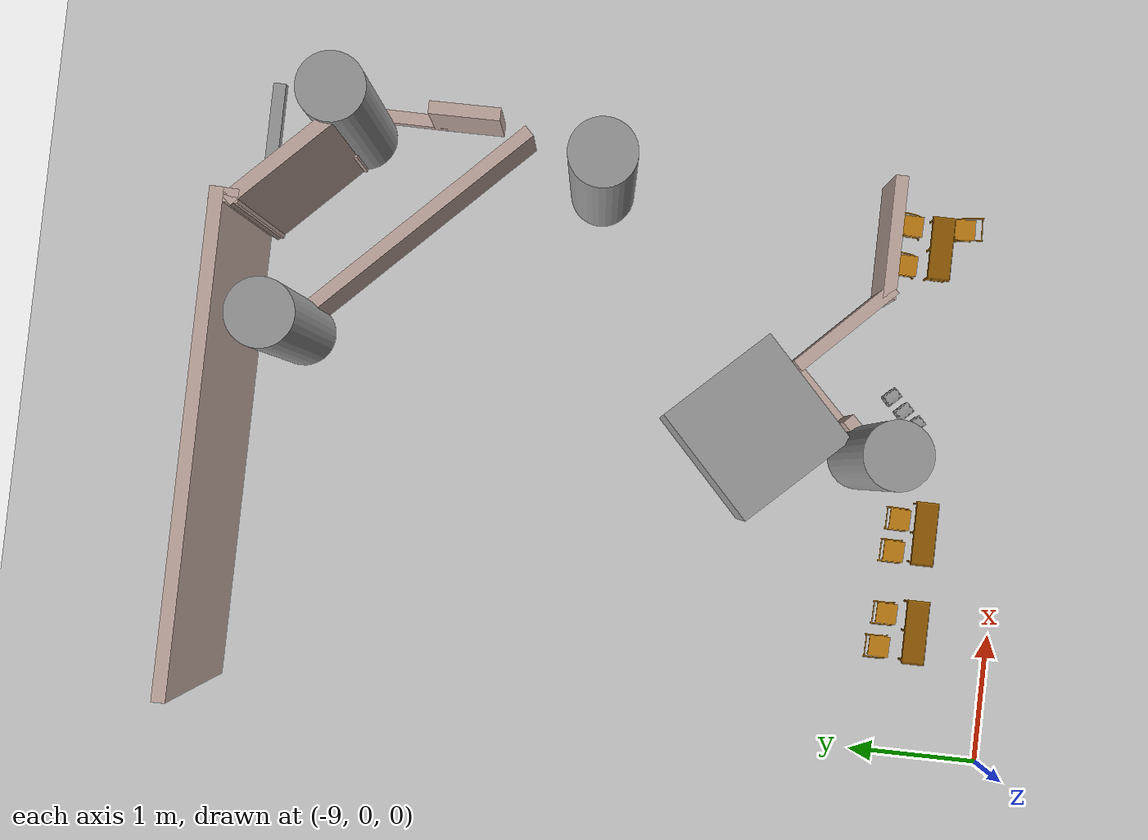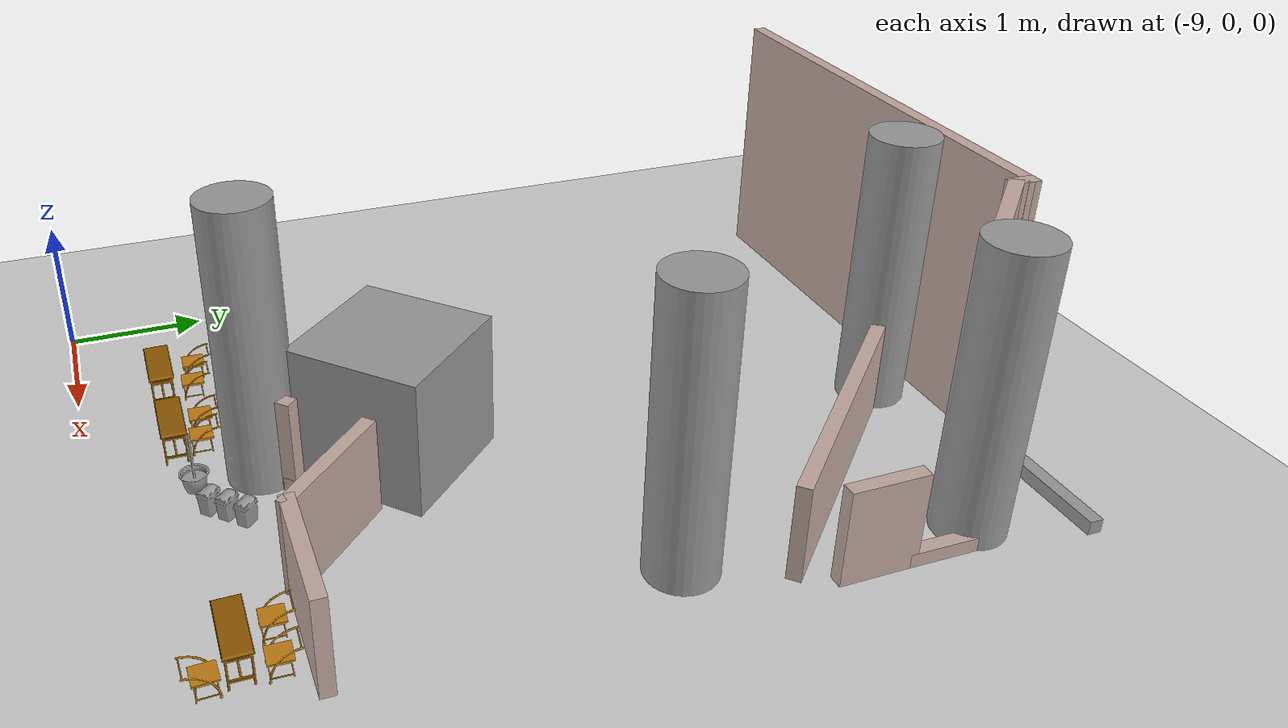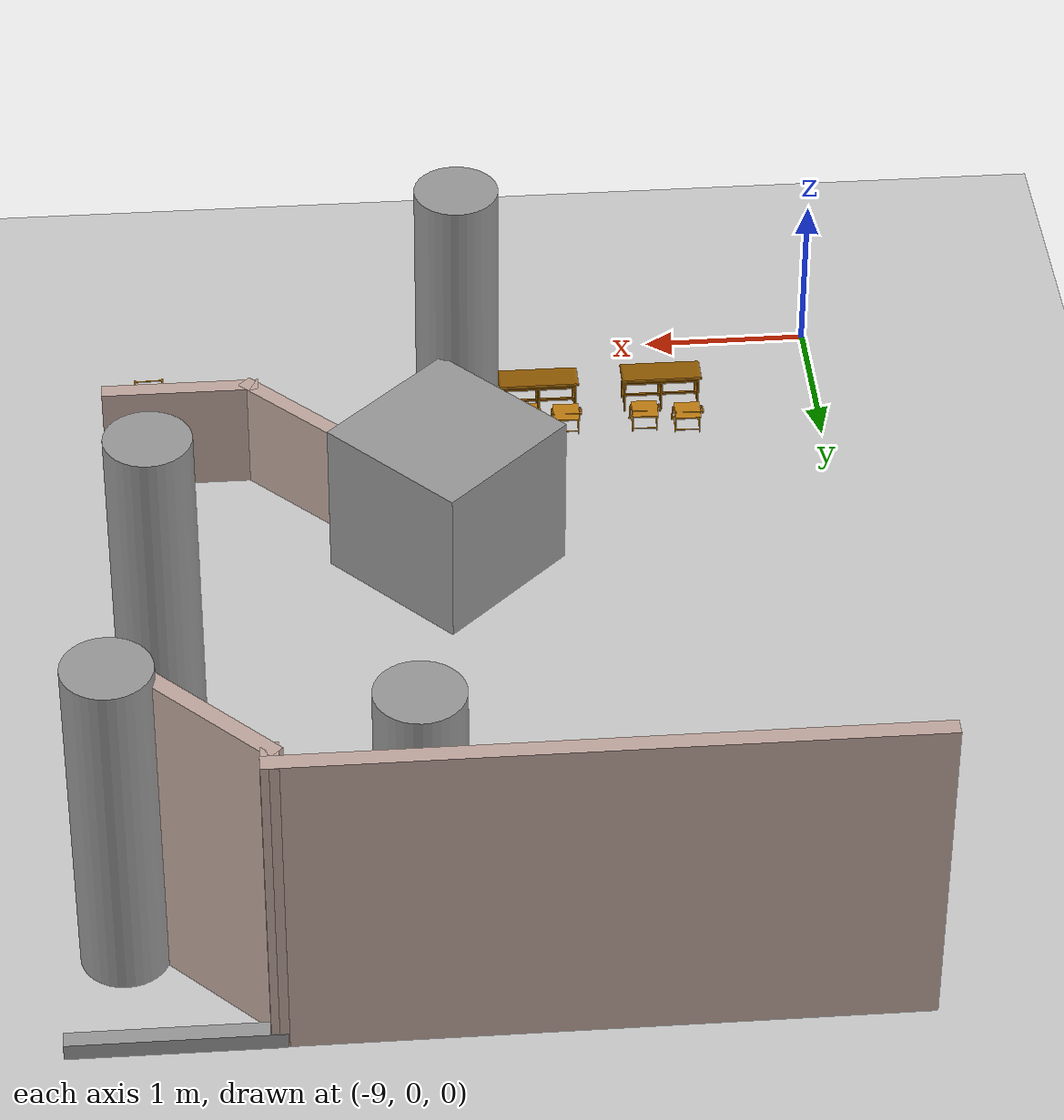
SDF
<sdf version="1.6">
 <world name="default">
  <model name="ground_plane">
   <static>1</static>
   <link name="link">
    <collision name="collision">
     <geometry><plane><normal>0 0 1</normal><size>100 100</size></plane></geometry>
     <surface>
      <contact><collide_bitmask>65535</collide_bitmask></contact>
      <friction><ode><mu>100</mu><mu2>50</mu2></ode></friction>
     </surface>
    </collision>
    <visual name="visual">
     <cast_shadows>0</cast_shadows>
     <geometry><plane><normal>0 0 1</normal><size>100 100</size></plane></geometry>
     <material>
      <script><uri>file://media/materials/scripts/gazebo.material</uri><name>Gazebo/Grey</name></script>
     </material>
    </visual>
   </link>
  </model>
  <model name="gedung_p">
   <pose>2.96636 -2.09069 0 0 -0 0</pose>
   <link name="Wall_116">
    <collision name="Wall_116_Collision">
     <geometry><box><size>1.20046 0.1 0.1</size></box></geometry>
     <pose>0 0 0.05 0 -0 0</pose>
    </collision>
    <visual name="Wall_116_Visual">
     <pose>0 0 0.05 0 -0 0</pose>
     <geometry><box><size>1.20046 0.1 0.1</size></box></geometry>
     <material>
      <script><uri>file://media/materials/scripts/gazebo.material</uri><name>Gazebo/Grey</name></script>
      <ambient>1 1 1 1</ambient>
     </material>
     <meta><layer>0</layer></meta>
    </visual>
    <pose>-7.82151 8.1548 0 0 -0 3.14159</pose>
   </link>
   <link name="Wall_122">
    <collision name="Wall_122_Collision">
     <geometry><box><size>2.45 0.1 0.7</size></box></geometry>
     <pose>0 0 0.35 0 -0 0</pose>
    </collision>
    <visual name="Wall_122_Visual">
     <pose>0 0 0.35 0 -0 0</pose>
     <geometry><box><size>2.45 0.1 0.7</size></box></geometry>
     <material>
      <script><uri>file://media/materials/scripts/gazebo.material</uri><name>Gazebo/Grey</name></script>
      <ambient>0.760784 0.662745 0.627451 1</ambient>
     </material>
     <meta><layer>0</layer></meta>
    </visual>
    <pose>-8.34851 6.9748 0 0 -0 -0.785398</pose>
   </link>
   <link name="Wall_26">
    <collision name="Wall_26_Collision">
     <geometry><box><size>3.5939 0.1 2</size></box></geometry>
     <pose>0 0 1 0 -0 0</pose>
    </collision>
    <visual name="Wall_26_Visual">
     <pose>0 0 1 0 -0 0</pose>
     <geometry><box><size>3.5939 0.1 2</size></box></geometry>
     <material>
      <script><uri>file://media/materials/scripts/gazebo.material</uri><name>Gazebo/Grey</name></script>
      <ambient>0.760784 0.662745 0.627451 1</ambient>
     </material>
     <meta><layer>0</layer></meta>
    </visual>
    <pose>-10.1275 8.1463 0 0 -0 -3.13959</pose>
   </link>
   <link name="Wall_28">
    <collision name="Wall_28_Collision">
     <geometry><box><size>0.207387 0.1 2</size></box></geometry>
     <pose>0 0 1 0 -0 0</pose>
    </collision>
    <visual name="Wall_28_Visual">
     <pose>0 0 1 0 -0 0</pose>
     <geometry><box><size>0.207387 0.1 2</size></box></geometry>
     <material>
      <script><uri>file://media/materials/scripts/gazebo.material</uri><name>Gazebo/Grey</name></script>
      <ambient>0.760784 0.662745 0.627451 1</ambient>
     </material>
     <meta><layer>0</layer></meta>
    </visual>
    <pose>-8.38251 8.0963 0 0 -0 -1.60816</pose>
   </link>
   <link name="Wall_29">
    <collision name="Wall_29_Collision">
     <geometry><box><size>0.95 0.1 2</size></box></geometry>
     <pose>0 0 1 0 -0 0</pose>
    </collision>
    <visual name="Wall_29_Visual">
     <pose>0 0 1 0 -0 0</pose>
     <geometry><box><size>0.95 0.1 2</size></box></geometry>
     <material>
      <script><uri>file://media/materials/scripts/gazebo.material</uri><name>Gazebo/Grey</name></script>
      <ambient>0.760784 0.662745 0.627451 1</ambient>
     </material>
     <meta><layer>0</layer></meta>
    </visual>
    <pose>-8.08401 7.7423 0 0 -0 -0.785398</pose>
   </link>
   <link name="Wall_30">
    <collision name="Wall_30_Collision">
     <geometry><box><size>0.5 0.1 0.7</size></box></geometry>
     <pose>0 0 0.35 0 -0 0</pose>
    </collision>
    <visual name="Wall_30_Visual">
     <pose>0 0 0.35 0 -0 0</pose>
     <geometry><box><size>0.5 0.1 0.7</size></box></geometry>
     <material>
      <script><uri>file://media/materials/scripts/gazebo.material</uri><name>Gazebo/Grey</name></script>
      <ambient>0.760784 0.662745 0.627451 1</ambient>
     </material>
     <meta><layer>0</layer></meta>
    </visual>
    <pose>-7.58351 7.4418 0 0 -0 0</pose>
   </link>
   <link name="Wall_39">
    <collision name="Wall_39_Collision">
     <geometry><box><size>0.949701 0.1 0.7</size></box></geometry>
     <pose>0 0 0.35 0 -0 0</pose>
    </collision>
    <visual name="Wall_39_Visual">
     <pose>0 0 0.35 0 -0 0</pose>
     <geometry><box><size>0.949701 0.1 0.7</size></box></geometry>
     <material>
      <script><uri>file://media/materials/scripts/gazebo.material</uri><name>Gazebo/Grey</name></script>
      <ambient>0.760784 0.662745 0.627451 1</ambient>
     </material>
     <meta><layer>0</layer></meta>
    </visual>
    <pose>-7.98551 3.2448 0 0 -0 3.14159</pose>
   </link>
   <link name="Wall_40">
    <collision name="Wall_40_Collision">
     <geometry><box><size>0.949942 0.1 0.7</size></box></geometry>
     <pose>0 0 0.35 0 -0 0</pose>
    </collision>
    <visual name="Wall_40_Visual">
     <pose>0 0 0.35 0 -0 0</pose>
     <geometry><box><size>0.949942 0.1 0.7</size></box></geometry>
     <material>
      <script><uri>file://media/materials/scripts/gazebo.material</uri><name>Gazebo/Grey</name></script>
      <ambient>0.760784 0.662745 0.627451 1</ambient>
     </material>
     <meta><layer>0</layer></meta>
    </visual>
    <pose>-8.71101 3.5453 0 0 -0 2.35619</pose>
   </link>
   <link name="Wall_42">
    <collision name="Wall_42_Collision">
     <geometry><box><size>0.699577 0.1 0.1</size></box></geometry>
     <pose>0 0 0.05 0 -0 0</pose>
    </collision>
    <visual name="Wall_42_Visual">
     <pose>0 0 0.05 0 -0 0</pose>
     <geometry><box><size>0.699577 0.1 0.1</size></box></geometry>
     <material>
      <script><uri>file://media/materials/scripts/gazebo.material</uri><name>Gazebo/Grey</name></script>
      <ambient>0.760784 0.662745 0.627451 1</ambient>
     </material>
     <meta><layer>0</layer></meta>
    </visual>
    <pose>-9.22351 3.63381 0 0 -0 -2.35619</pose>
   </link>
   <link name="Wall_45">
    <collision name="Wall_45_Collision">
     <geometry><box><size>0.449951 0.1 0.7</size></box></geometry>
     <pose>0 0 0.35 0 -0 0</pose>
    </collision>
    <visual name="Wall_45_Visual">
     <pose>0 0 0.35 0 -0 0</pose>
     <geometry><box><size>0.449951 0.1 0.7</size></box></geometry>
     <material>
      <script><uri>file://media/materials/scripts/gazebo.material</uri><name>Gazebo/Grey</name></script>
      <ambient>0.760784 0.662745 0.627451 1</ambient>
     </material>
     <meta><layer>0</layer></meta>
    </visual>
    <pose>-9.55901 3.29831 0 0 -0 -2.35619</pose>
   </link>
   <link name="Wall_48">
    <collision name="Wall_48_Collision">
     <geometry><box><size>0.55301 0.1 0.7</size></box></geometry>
     <pose>0 0 0.35 0 -0 0</pose>
    </collision>
    <visual name="Wall_48_Visual">
     <pose>0 0 0.35 0 -0 0</pose>
     <geometry><box><size>0.55301 0.1 0.7</size></box></geometry>
     <material>
      <script><uri>file://media/materials/scripts/gazebo.material</uri><name>Gazebo/Grey</name></script>
      <ambient>0.760784 0.662745 0.627451 1</ambient>
     </material>
     <meta><layer>0</layer></meta>
    </visual>
    <pose>-7.38501 6.61831 0 0 -0 -1.56417</pose>
   </link>
   <link name="Wall_52">
    <collision name="Wall_52_Collision">
     <geometry><box><size>0.697008 0.1 0.1</size></box></geometry>
     <pose>0 0 0.05 0 -0 0</pose>
    </collision>
    <visual name="Wall_52_Visual">
     <pose>0 0 0.05 0 -0 0</pose>
     <geometry><box><size>0.697008 0.1 0.1</size></box></geometry>
     <material>
      <script><uri>file://media/materials/scripts/gazebo.material</uri><name>Gazebo/Grey</name></script>
      <ambient>0.760784 0.662745 0.627451 1</ambient>
     </material>
     <meta><layer>0</layer></meta>
    </visual>
    <pose>-7.38501 7.1433 0 0 -0 1.56577</pose>
   </link>
   <static>1</static>
  </model>
  <model name="tiang_besar_11">
   <link name="link_0">
    <inertial>
     <mass>1</mass>
     <inertia>
      <ixx>0.166667</ixx>
      <ixy>0</ixy>
      <ixz>0</ixz>
      <iyy>0.166667</iyy>
      <iyz>0</iyz>
      <izz>0.166667</izz>
     </inertia>
    </inertial>
    <pose>0.080543 -0.031124 0 0 -0 0</pose>
    <visual name="visual">
     <geometry>
      <mesh><uri>/home/thardi/Gazebo Objek/cylinder sedang.dae</uri><scale>1 1 1.15</scale></mesh>
     </geometry>
     <material>
      <lighting>1</lighting>
      <script><uri>file://media/materials/scripts/gazebo.material</uri><name>Gazebo/Grey</name></script>
      <shader type="vertex"><normal_map>__default__</normal_map></shader>
      <ambient>0.3 0.3 0.3 1</ambient>
      <diffuse>0.7 0.7 0.7 1</diffuse>
      <specular>0.01 0.01 0.01 1</specular>
      <emissive>0 0 0 1</emissive>
     </material>
    </visual>
    <collision name="collision">
     <geometry>
      <mesh><uri>/home/thardi/Gazebo Objek/cylinder sedang.dae</uri><scale>1 1 1.15</scale></mesh>
     </geometry>
     <surface>
      <friction>
       <ode><mu>1.15</mu><mu2>1</mu2><fdir1>0 0 0</fdir1><slip1>0</slip1><slip2>0</slip2></ode>
       <torsional>
        <coefficient>1</coefficient>
        <patch_radius>0</patch_radius>
        <surface_radius>0</surface_radius>
        <use_patch_radius>1</use_patch_radius>
        <ode><slip>0</slip></ode>
       </torsional>
      </friction>
      <bounce><restitution_coefficient>0</restitution_coefficient><threshold>1e+06</threshold></bounce>
      <contact>
       <collide_without_contact>0</collide_without_contact>
       <collide_without_contact_bitmask>1</collide_without_contact_bitmask>
       <collide_bitmask>1</collide_bitmask>
       <ode>
        <soft_cfm>0</soft_cfm>
        <soft_erp>0.2</soft_erp>
        <kp>1e+13</kp>
        <kd>1</kd>
        <max_vel>0.01</max_vel>
        <min_depth>0</min_depth>
       </ode>
       <bullet>
        <split_impulse>1</split_impulse>
        <split_impulse_penetration_threshold>-0.01</split_impulse_penetration_threshold>
        <soft_cfm>0</soft_cfm>
        <soft_erp>0.2</soft_erp>
        <kp>1e+13</kp>
        <kd>1</kd>
       </bullet>
      </contact>
     </surface>
    </collision>
   </link>
   <static>1</static>
   <pose>-6.28848 5.6861 0 0 -0 0</pose>
  </model>
  <model name="tiang_besar_12">
   <link name="link_0">
    <inertial>
     <mass>1</mass>
     <inertia>
      <ixx>0.166667</ixx>
      <ixy>0</ixy>
      <ixz>0</ixz>
      <iyy>0.166667</iyy>
      <iyz>0</iyz>
      <izz>0.166667</izz>
     </inertia>
    </inertial>
    <pose>0.080543 -0.031124 0 0 -0 0</pose>
    <visual name="visual">
     <geometry>
      <mesh><uri>/home/thardi/Gazebo Objek/cylinder sedang.dae</uri><scale>1 1 1.15</scale></mesh>
     </geometry>
     <material>
      <lighting>1</lighting>
      <script><uri>file://media/materials/scripts/gazebo.material</uri><name>Gazebo/Grey</name></script>
      <shader type="vertex"><normal_map>__default__</normal_map></shader>
      <ambient>0.3 0.3 0.3 1</ambient>
      <diffuse>0.7 0.7 0.7 1</diffuse>
      <specular>0.01 0.01 0.01 1</specular>
      <emissive>0 0 0 1</emissive>
     </material>
    </visual>
    <collision name="collision">
     <geometry>
      <mesh><uri>/home/thardi/Gazebo Objek/cylinder sedang.dae</uri><scale>1 1 1.15</scale></mesh>
     </geometry>
     <surface>
      <friction>
       <ode><mu>1.15</mu><mu2>1</mu2><fdir1>0 0 0</fdir1><slip1>0</slip1><slip2>0</slip2></ode>
       <torsional>
        <coefficient>1</coefficient>
        <patch_radius>0</patch_radius>
        <surface_radius>0</surface_radius>
        <use_patch_radius>1</use_patch_radius>
        <ode><slip>0</slip></ode>
       </torsional>
      </friction>
      <bounce><restitution_coefficient>0</restitution_coefficient><threshold>1e+06</threshold></bounce>
      <contact>
       <collide_without_contact>0</collide_without_contact>
       <collide_without_contact_bitmask>1</collide_without_contact_bitmask>
       <collide_bitmask>1</collide_bitmask>
       <ode>
        <soft_cfm>0</soft_cfm>
        <soft_erp>0.2</soft_erp>
        <kp>1e+13</kp>
        <kd>1</kd>
        <max_vel>0.01</max_vel>
        <min_depth>0</min_depth>
       </ode>
       <bullet>
        <split_impulse>1</split_impulse>
        <split_impulse_penetration_threshold>-0.01</split_impulse_penetration_threshold>
        <soft_cfm>0</soft_cfm>
        <soft_erp>0.2</soft_erp>
        <kp>1e+13</kp>
        <kd>1</kd>
       </bullet>
      </contact>
     </surface>
    </collision>
   </link>
   <static>1</static>
   <pose>-4.67931 5.37519 0 0 -0 0</pose>
  </model>
  <model name="tiang_besar_13">
   <link name="link_0">
    <inertial>
     <mass>1</mass>
     <inertia>
      <ixx>0.166667</ixx>
      <ixy>0</ixy>
      <ixz>0</ixz>
      <iyy>0.166667</iyy>
      <iyz>0</iyz>
      <izz>0.166667</izz>
     </inertia>
    </inertial>
    <pose>0.080543 -0.031124 0 0 -0 0</pose>
    <visual name="visual">
     <geometry>
      <mesh><uri>/home/thardi/Gazebo Objek/cylinder sedang.dae</uri><scale>1 1 1.15</scale></mesh>
     </geometry>
     <material>
      <lighting>1</lighting>
      <script><uri>file://media/materials/scripts/gazebo.material</uri><name>Gazebo/Grey</name></script>
      <shader type="vertex"><normal_map>__default__</normal_map></shader>
      <ambient>0.3 0.3 0.3 1</ambient>
      <diffuse>0.7 0.7 0.7 1</diffuse>
      <specular>0.01 0.01 0.01 1</specular>
      <emissive>0 0 0 1</emissive>
     </material>
    </visual>
    <collision name="collision">
     <geometry>
      <mesh><uri>/home/thardi/Gazebo Objek/cylinder sedang.dae</uri><scale>1 1 1.15</scale></mesh>
     </geometry>
     <surface>
      <friction>
       <ode><mu>1.15</mu><mu2>1</mu2><fdir1>0 0 0</fdir1><slip1>0</slip1><slip2>0</slip2></ode>
       <torsional>
        <coefficient>1</coefficient>
        <patch_radius>0</patch_radius>
        <surface_radius>0</surface_radius>
        <use_patch_radius>1</use_patch_radius>
        <ode><slip>0</slip></ode>
       </torsional>
      </friction>
      <bounce><restitution_coefficient>0</restitution_coefficient><threshold>1e+06</threshold></bounce>
      <contact>
       <collide_without_contact>0</collide_without_contact>
       <collide_without_contact_bitmask>1</collide_without_contact_bitmask>
       <collide_bitmask>1</collide_bitmask>
       <ode>
        <soft_cfm>0</soft_cfm>
        <soft_erp>0.2</soft_erp>
        <kp>1e+13</kp>
        <kd>1</kd>
        <max_vel>0.01</max_vel>
        <min_depth>0</min_depth>
       </ode>
       <bullet>
        <split_impulse>1</split_impulse>
        <split_impulse_penetration_threshold>-0.01</split_impulse_penetration_threshold>
        <soft_cfm>0</soft_cfm>
        <soft_erp>0.2</soft_erp>
        <kp>1e+13</kp>
        <kd>1</kd>
       </bullet>
      </contact>
     </surface>
    </collision>
   </link>
   <static>1</static>
   <pose>-6.788 1.19748 0 0 -0 0</pose>
  </model>
  <model name="tiang_besar_14">
   <link name="link_0">
    <inertial>
     <mass>1</mass>
     <inertia>
      <ixx>0.166667</ixx>
      <ixy>0</ixy>
      <ixz>0</ixz>
      <iyy>0.166667</iyy>
      <iyz>0</iyz>
      <izz>0.166667</izz>
     </inertia>
    </inertial>
    <pose>0.080543 -0.031124 0 0 -0 0</pose>
    <visual name="visual">
     <geometry>
      <mesh><uri>/home/thardi/Gazebo Objek/cylinder sedang.dae</uri><scale>1 1 1.15</scale></mesh>
     </geometry>
     <material>
      <lighting>1</lighting>
      <script><uri>file://media/materials/scripts/gazebo.material</uri><name>Gazebo/Grey</name></script>
      <shader type="vertex"><normal_map>__default__</normal_map></shader>
      <ambient>0.3 0.3 0.3 1</ambient>
      <diffuse>0.7 0.7 0.7 1</diffuse>
      <specular>0.01 0.01 0.01 1</specular>
      <emissive>0 0 0 1</emissive>
     </material>
    </visual>
    <collision name="collision">
     <geometry>
      <mesh><uri>/home/thardi/Gazebo Objek/cylinder sedang.dae</uri><scale>1 1 1.15</scale></mesh>
     </geometry>
     <surface>
      <friction>
       <ode><mu>1.15</mu><mu2>1</mu2><fdir1>0 0 0</fdir1><slip1>0</slip1><slip2>0</slip2></ode>
       <torsional>
        <coefficient>1</coefficient>
        <patch_radius>0</patch_radius>
        <surface_radius>0</surface_radius>
        <use_patch_radius>1</use_patch_radius>
        <ode><slip>0</slip></ode>
       </torsional>
      </friction>
      <bounce><restitution_coefficient>0</restitution_coefficient><threshold>1e+06</threshold></bounce>
      <contact>
       <collide_without_contact>0</collide_without_contact>
       <collide_without_contact_bitmask>1</collide_without_contact_bitmask>
       <collide_bitmask>1</collide_bitmask>
       <ode>
        <soft_cfm>0</soft_cfm>
        <soft_erp>0.2</soft_erp>
        <kp>1e+13</kp>
        <kd>1</kd>
        <max_vel>0.01</max_vel>
        <min_depth>0</min_depth>
       </ode>
       <bullet>
        <split_impulse>1</split_impulse>
        <split_impulse_penetration_threshold>-0.01</split_impulse_penetration_threshold>
        <soft_cfm>0</soft_cfm>
        <soft_erp>0.2</soft_erp>
        <kp>1e+13</kp>
        <kd>1</kd>
       </bullet>
      </contact>
     </surface>
    </collision>
   </link>
   <static>1</static>
   <pose>-4.92685 3.45088 0 0 -0 0</pose>
  </model>
  <model name="meja_kantin_1">
   <link name="link_9">
    <inertial>
     <mass>1</mass>
     <inertia>
      <ixx>0.166667</ixx>
      <ixy>0</ixy>
      <ixz>0</ixz>
      <iyy>0.166667</iyy>
      <iyz>0</iyz>
      <izz>0.166667</izz>
     </inertia>
    </inertial>
    <visual name="visual">
     <geometry>
      <mesh><uri>/home/thardi/Gazebo Objek/meja kantin.dae</uri><scale>0.25 0.25 0.3</scale></mesh>
     </geometry>
     <material>
      <lighting>1</lighting>
      <script><uri>file://media/materials/scripts/gazebo.material</uri><name>Gazebo/Grey</name></script>
      <shader type="vertex"><normal_map>__default__</normal_map></shader>
      <ambient>0.561 0.349 0.008 1</ambient>
      <diffuse>0.561 0.349 0.008 1</diffuse>
      <specular>0.561 0.349 0.008 1</specular>
      <emissive>0.561 0.349 0.008 1</emissive>
     </material>
    </visual>
    <collision name="collision">
     <geometry>
      <mesh><uri>/home/thardi/Gazebo Objek/meja kantin.dae</uri><scale>0.25 0.25 0.3</scale></mesh>
     </geometry>
     <surface>
      <friction>
       <ode><mu>1</mu><mu2>1</mu2><fdir1>0 0 0</fdir1><slip1>0</slip1><slip2>0</slip2></ode>
       <torsional>
        <coefficient>1</coefficient>
        <patch_radius>0</patch_radius>
        <surface_radius>0</surface_radius>
        <use_patch_radius>1</use_patch_radius>
        <ode><slip>0</slip></ode>
       </torsional>
      </friction>
      <bounce><restitution_coefficient>0</restitution_coefficient><threshold>1e+06</threshold></bounce>
      <contact>
       <collide_without_contact>0</collide_without_contact>
       <collide_without_contact_bitmask>1</collide_without_contact_bitmask>
       <collide_bitmask>1</collide_bitmask>
       <ode>
        <soft_cfm>0</soft_cfm>
        <soft_erp>0.2</soft_erp>
        <kp>1e+13</kp>
        <kd>1</kd>
        <max_vel>0.01</max_vel>
        <min_depth>0</min_depth>
       </ode>
       <bullet>
        <split_impulse>1</split_impulse>
        <split_impulse_penetration_threshold>-0.01</split_impulse_penetration_threshold>
        <soft_cfm>0</soft_cfm>
        <soft_erp>0.2</soft_erp>
        <kp>1e+13</kp>
        <kd>1</kd>
       </bullet>
      </contact>
     </surface>
    </collision>
   </link>
   <static>1</static>
   <pose>-8.02224 0.609026 0 0 -0 0</pose>
  </model>
  <model name="meja_kantin_2">
   <link name="link_9">
    <inertial>
     <mass>1</mass>
     <inertia>
      <ixx>0.166667</ixx>
      <ixy>0</ixy>
      <ixz>0</ixz>
      <iyy>0.166667</iyy>
      <iyz>0</iyz>
      <izz>0.166667</izz>
     </inertia>
    </inertial>
    <visual name="visual">
     <geometry>
      <mesh><uri>/home/thardi/Gazebo Objek/meja kantin.dae</uri><scale>0.25 0.25 0.3</scale></mesh>
     </geometry>
     <material>
      <lighting>1</lighting>
      <script><uri>file://media/materials/scripts/gazebo.material</uri><name>Gazebo/Grey</name></script>
      <shader type="vertex"><normal_map>__default__</normal_map></shader>
      <ambient>0.561 0.349 0.008 1</ambient>
      <diffuse>0.561 0.349 0.008 1</diffuse>
      <specular>0.561 0.349 0.008 1</specular>
      <emissive>0.561 0.349 0.008 1</emissive>
     </material>
    </visual>
    <collision name="collision">
     <geometry>
      <mesh><uri>/home/thardi/Gazebo Objek/meja kantin.dae</uri><scale>0.25 0.25 0.3</scale></mesh>
     </geometry>
     <surface>
      <friction>
       <ode><mu>1</mu><mu2>1</mu2><fdir1>0 0 0</fdir1><slip1>0</slip1><slip2>0</slip2></ode>
       <torsional>
        <coefficient>1</coefficient>
        <patch_radius>0</patch_radius>
        <surface_radius>0</surface_radius>
        <use_patch_radius>1</use_patch_radius>
        <ode><slip>0</slip></ode>
       </torsional>
      </friction>
      <bounce><restitution_coefficient>0</restitution_coefficient><threshold>1e+06</threshold></bounce>
      <contact>
       <collide_without_contact>0</collide_without_contact>
       <collide_without_contact_bitmask>1</collide_without_contact_bitmask>
       <collide_bitmask>1</collide_bitmask>
       <ode>
        <soft_cfm>0</soft_cfm>
        <soft_erp>0.2</soft_erp>
        <kp>1e+13</kp>
        <kd>1</kd>
        <max_vel>0.01</max_vel>
        <min_depth>0</min_depth>
       </ode>
       <bullet>
        <split_impulse>1</split_impulse>
        <split_impulse_penetration_threshold>-0.01</split_impulse_penetration_threshold>
        <soft_cfm>0</soft_cfm>
        <soft_erp>0.2</soft_erp>
        <kp>1e+13</kp>
        <kd>1</kd>
       </bullet>
      </contact>
     </surface>
    </collision>
   </link>
   <static>1</static>
   <pose>-7.24941 0.617836 0 0 -0 0</pose>
  </model>
  <model name="meja_kantin_3">
   <link name="link_9">
    <inertial>
     <mass>1</mass>
     <inertia>
      <ixx>0.166667</ixx>
      <ixy>0</ixy>
      <ixz>0</ixz>
      <iyy>0.166667</iyy>
      <iyz>0</iyz>
      <izz>0.166667</izz>
     </inertia>
    </inertial>
    <visual name="visual">
     <geometry>
      <mesh><uri>/home/thardi/Gazebo Objek/meja kantin.dae</uri><scale>0.25 0.25 0.3</scale></mesh>
     </geometry>
     <material>
      <lighting>1</lighting>
      <script><uri>file://media/materials/scripts/gazebo.material</uri><name>Gazebo/Grey</name></script>
      <shader type="vertex"><normal_map>__default__</normal_map></shader>
      <ambient>0.561 0.349 0.008 1</ambient>
      <diffuse>0.561 0.349 0.008 1</diffuse>
      <specular>0.561 0.349 0.008 1</specular>
      <emissive>0.561 0.349 0.008 1</emissive>
     </material>
    </visual>
    <collision name="collision">
     <geometry>
      <mesh><uri>/home/thardi/Gazebo Objek/meja kantin.dae</uri><scale>0.25 0.25 0.3</scale></mesh>
     </geometry>
     <surface>
      <friction>
       <ode><mu>1</mu><mu2>1</mu2><fdir1>0 0 0</fdir1><slip1>0</slip1><slip2>0</slip2></ode>
       <torsional>
        <coefficient>1</coefficient>
        <patch_radius>0</patch_radius>
        <surface_radius>0</surface_radius>
        <use_patch_radius>1</use_patch_radius>
        <ode><slip>0</slip></ode>
       </torsional>
      </friction>
      <bounce><restitution_coefficient>0</restitution_coefficient><threshold>1e+06</threshold></bounce>
      <contact>
       <collide_without_contact>0</collide_without_contact>
       <collide_without_contact_bitmask>1</collide_without_contact_bitmask>
       <collide_bitmask>1</collide_bitmask>
       <ode>
        <soft_cfm>0</soft_cfm>
        <soft_erp>0.2</soft_erp>
        <kp>1e+13</kp>
        <kd>1</kd>
        <max_vel>0.01</max_vel>
        <min_depth>0</min_depth>
       </ode>
       <bullet>
        <split_impulse>1</split_impulse>
        <split_impulse_penetration_threshold>-0.01</split_impulse_penetration_threshold>
        <soft_cfm>0</soft_cfm>
        <soft_erp>0.2</soft_erp>
        <kp>1e+13</kp>
        <kd>1</kd>
       </bullet>
      </contact>
     </surface>
    </collision>
   </link>
   <static>1</static>
   <pose>-5.00888 0.725093 0 0 -0 0</pose>
  </model>
  <model name="pot_0">
   <link name="link_12">
    <inertial>
     <mass>1</mass>
     <inertia>
      <ixx>0.166667</ixx>
      <ixy>0</ixy>
      <ixz>0</ixz>
      <iyy>0.166667</iyy>
      <iyz>0</iyz>
      <izz>0.166667</izz>
     </inertia>
    </inertial>
    <visual name="visual">
     <geometry><mesh><uri>/home/thardi/Gazebo Objek/pot.dae</uri><scale>0.2 0.2 0.2</scale></mesh></geometry>
     <material>
      <lighting>1</lighting>
      <script><uri>file://media/materials/scripts/gazebo.material</uri><name>Gazebo/Grey</name></script>
      <shader type="vertex"><normal_map>__default__</normal_map></shader>
      <ambient>0.3 0.3 0.3 1</ambient>
      <diffuse>0.7 0.7 0.7 1</diffuse>
      <specular>0.01 0.01 0.01 1</specular>
      <emissive>0 0 0 1</emissive>
     </material>
    </visual>
    <collision name="collision">
     <geometry><mesh><uri>/home/thardi/Gazebo Objek/pot.dae</uri><scale>0.2 0.2 0.2</scale></mesh></geometry>
     <surface>
      <friction>
       <ode><mu>1</mu><mu2>1</mu2><fdir1>0 0 0</fdir1><slip1>0</slip1><slip2>0</slip2></ode>
       <torsional>
        <coefficient>1</coefficient>
        <patch_radius>0</patch_radius>
        <surface_radius>0</surface_radius>
        <use_patch_radius>1</use_patch_radius>
        <ode><slip>0</slip></ode>
       </torsional>
      </friction>
      <bounce><restitution_coefficient>0</restitution_coefficient><threshold>1e+06</threshold></bounce>
      <contact>
       <collide_without_contact>0</collide_without_contact>
       <collide_without_contact_bitmask>1</collide_without_contact_bitmask>
       <collide_bitmask>1</collide_bitmask>
       <ode>
        <soft_cfm>0</soft_cfm>
        <soft_erp>0.2</soft_erp>
        <kp>1e+13</kp>
        <kd>1</kd>
        <max_vel>0.01</max_vel>
        <min_depth>0</min_depth>
       </ode>
       <bullet>
        <split_impulse>1</split_impulse>
        <split_impulse_penetration_threshold>-0.01</split_impulse_penetration_threshold>
        <soft_cfm>0</soft_cfm>
        <soft_erp>0.2</soft_erp>
        <kp>1e+13</kp>
        <kd>1</kd>
       </bullet>
      </contact>
     </surface>
    </collision>
   </link>
   <static>1</static>
   <pose>-6.77506 0.802793 0 0 -0 0</pose>
  </model>
  <model name="tong_sampah_clone_1">
   <link name="link_13">
    <inertial>
     <mass>1</mass>
     <inertia>
      <ixx>0.166667</ixx>
      <ixy>0</ixy>
      <ixz>0</ixz>
      <iyy>0.166667</iyy>
      <iyz>0</iyz>
      <izz>0.166667</izz>
     </inertia>
    </inertial>
    <visual name="visual">
     <geometry>
      <mesh><uri>/home/thardi/Gazebo Objek/tong sampah.dae</uri><scale>0.05 0.05 0.05</scale></mesh>
     </geometry>
     <material>
      <lighting>1</lighting>
      <script><uri>file://media/materials/scripts/gazebo.material</uri><name>Gazebo/Grey</name></script>
      <shader type="vertex"><normal_map>__default__</normal_map></shader>
      <ambient>0.3 0.3 0.3 1</ambient>
      <diffuse>0.7 0.7 0.7 1</diffuse>
      <specular>0.01 0.01 0.01 1</specular>
      <emissive>0 0 0 1</emissive>
     </material>
    </visual>
    <collision name="collision">
     <geometry>
      <mesh><uri>/home/thardi/Gazebo Objek/tong sampah.dae</uri><scale>0.05 0.05 0.05</scale></mesh>
     </geometry>
     <surface>
      <friction>
       <ode><mu>1</mu><mu2>1</mu2><fdir1>0 0 0</fdir1><slip1>0</slip1><slip2>0</slip2></ode>
       <torsional>
        <coefficient>1</coefficient>
        <patch_radius>0</patch_radius>
        <surface_radius>0</surface_radius>
        <use_patch_radius>1</use_patch_radius>
        <ode><slip>0</slip></ode>
       </torsional>
      </friction>
      <bounce><restitution_coefficient>0</restitution_coefficient><threshold>1e+06</threshold></bounce>
      <contact>
       <collide_without_contact>0</collide_without_contact>
       <collide_without_contact_bitmask>1</collide_without_contact_bitmask>
       <collide_bitmask>1</collide_bitmask>
       <ode>
        <soft_cfm>0</soft_cfm>
        <soft_erp>0.2</soft_erp>
        <kp>1e+13</kp>
        <kd>1</kd>
        <max_vel>0.01</max_vel>
        <min_depth>0</min_depth>
       </ode>
       <bullet>
        <split_impulse>1</split_impulse>
        <split_impulse_penetration_threshold>-0.01</split_impulse_penetration_threshold>
        <soft_cfm>0</soft_cfm>
        <soft_erp>0.2</soft_erp>
        <kp>1e+13</kp>
        <kd>1</kd>
       </bullet>
      </contact>
     </surface>
    </collision>
   </link>
   <static>1</static>
   <pose>-6.48363 0.777279 0 0 0 -0.801075</pose>
  </model>
  <model name="tong_sampah_clone_1_clone">
   <link name="link_13">
    <inertial>
     <mass>1</mass>
     <inertia>
      <ixx>0.166667</ixx>
      <ixy>0</ixy>
      <ixz>0</ixz>
      <iyy>0.166667</iyy>
      <iyz>0</iyz>
      <izz>0.166667</izz>
     </inertia>
    </inertial>
    <visual name="visual">
     <geometry>
      <mesh><uri>/home/thardi/Gazebo Objek/tong sampah.dae</uri><scale>0.05 0.05 0.05</scale></mesh>
     </geometry>
     <material>
      <lighting>1</lighting>
      <script><uri>file://media/materials/scripts/gazebo.material</uri><name>Gazebo/Grey</name></script>
      <shader type="vertex"><normal_map>__default__</normal_map></shader>
      <ambient>0.3 0.3 0.3 1</ambient>
      <diffuse>0.7 0.7 0.7 1</diffuse>
      <specular>0.01 0.01 0.01 1</specular>
      <emissive>0 0 0 1</emissive>
     </material>
    </visual>
    <collision name="collision">
     <geometry>
      <mesh><uri>/home/thardi/Gazebo Objek/tong sampah.dae</uri><scale>0.05 0.05 0.05</scale></mesh>
     </geometry>
     <surface>
      <friction>
       <ode><mu>1</mu><mu2>1</mu2><fdir1>0 0 0</fdir1><slip1>0</slip1><slip2>0</slip2></ode>
       <torsional>
        <coefficient>1</coefficient>
        <patch_radius>0</patch_radius>
        <surface_radius>0</surface_radius>
        <use_patch_radius>1</use_patch_radius>
        <ode><slip>0</slip></ode>
       </torsional>
      </friction>
      <bounce><restitution_coefficient>0</restitution_coefficient><threshold>1e+06</threshold></bounce>
      <contact>
       <collide_without_contact>0</collide_without_contact>
       <collide_without_contact_bitmask>1</collide_without_contact_bitmask>
       <collide_bitmask>1</collide_bitmask>
       <ode>
        <soft_cfm>0</soft_cfm>
        <soft_erp>0.2</soft_erp>
        <kp>1e+13</kp>
        <kd>1</kd>
        <max_vel>0.01</max_vel>
        <min_depth>0</min_depth>
       </ode>
       <bullet>
        <split_impulse>1</split_impulse>
        <split_impulse_penetration_threshold>-0.01</split_impulse_penetration_threshold>
        <soft_cfm>0</soft_cfm>
        <soft_erp>0.2</soft_erp>
        <kp>1e+13</kp>
        <kd>1</kd>
       </bullet>
      </contact>
     </surface>
    </collision>
   </link>
   <static>1</static>
   <pose>-6.39049 0.881945 0 0 0 -0.801075</pose>
  </model>
  <model name="tong_sampah_clone_1_clone_0">
   <link name="link_13">
    <inertial>
     <mass>1</mass>
     <inertia>
      <ixx>0.166667</ixx>
      <ixy>0</ixy>
      <ixz>0</ixz>
      <iyy>0.166667</iyy>
      <iyz>0</iyz>
      <izz>0.166667</izz>
     </inertia>
    </inertial>
    <visual name="visual">
     <geometry>
      <mesh><uri>/home/thardi/Gazebo Objek/tong sampah.dae</uri><scale>0.05 0.05 0.05</scale></mesh>
     </geometry>
     <material>
      <lighting>1</lighting>
      <script><uri>file://media/materials/scripts/gazebo.material</uri><name>Gazebo/Grey</name></script>
      <shader type="vertex"><normal_map>__default__</normal_map></shader>
      <ambient>0.3 0.3 0.3 1</ambient>
      <diffuse>0.7 0.7 0.7 1</diffuse>
      <specular>0.01 0.01 0.01 1</specular>
      <emissive>0 0 0 1</emissive>
     </material>
    </visual>
    <collision name="collision">
     <geometry>
      <mesh><uri>/home/thardi/Gazebo Objek/tong sampah.dae</uri><scale>0.05 0.05 0.05</scale></mesh>
     </geometry>
     <surface>
      <friction>
       <ode><mu>1</mu><mu2>1</mu2><fdir1>0 0 0</fdir1><slip1>0</slip1><slip2>0</slip2></ode>
       <torsional>
        <coefficient>1</coefficient>
        <patch_radius>0</patch_radius>
        <surface_radius>0</surface_radius>
        <use_patch_radius>1</use_patch_radius>
        <ode><slip>0</slip></ode>
       </torsional>
      </friction>
      <bounce><restitution_coefficient>0</restitution_coefficient><threshold>1e+06</threshold></bounce>
      <contact>
       <collide_without_contact>0</collide_without_contact>
       <collide_without_contact_bitmask>1</collide_without_contact_bitmask>
       <collide_bitmask>1</collide_bitmask>
       <ode>
        <soft_cfm>0</soft_cfm>
        <soft_erp>0.2</soft_erp>
        <kp>1e+13</kp>
        <kd>1</kd>
        <max_vel>0.01</max_vel>
        <min_depth>0</min_depth>
       </ode>
       <bullet>
        <split_impulse>1</split_impulse>
        <split_impulse_penetration_threshold>-0.01</split_impulse_penetration_threshold>
        <soft_cfm>0</soft_cfm>
        <soft_erp>0.2</soft_erp>
        <kp>1e+13</kp>
        <kd>1</kd>
       </bullet>
      </contact>
     </surface>
    </collision>
   </link>
   <static>1</static>
   <pose>-6.28569 0.987654 0 0 0 -0.801075</pose>
  </model>
  <model name="kursi_kantin_clone_10">
   <link name="link_1">
    <inertial>
     <mass>1</mass>
     <inertia>
      <ixx>0.166667</ixx>
      <ixy>0</ixy>
      <ixz>0</ixz>
      <iyy>0.166667</iyy>
      <iyz>0</iyz>
      <izz>0.166667</izz>
     </inertia>
    </inertial>
    <visual name="visual">
     <geometry>
      <mesh><uri>/home/thardi/Gazebo Objek/kursi kantin.dae</uri><scale>0.2 0.2 0.2</scale></mesh>
     </geometry>
     <material>
      <lighting>1</lighting>
      <script><uri>file://media/materials/scripts/gazebo.material</uri><name>Gazebo/Grey</name></script>
      <shader type="vertex"><normal_map>__default__</normal_map></shader>
      <ambient>0.757 0.49 0.067 1</ambient>
      <diffuse>0.757 0.49 0.067 1</diffuse>
      <specular>0.757 0.49 0.067 1</specular>
      <emissive>0.757 0.49 0.067 1</emissive>
     </material>
    </visual>
    <collision name="collision">
     <geometry>
      <mesh><uri>/home/thardi/Gazebo Objek/kursi kantin.dae</uri><scale>0.2 0.2 0.2</scale></mesh>
     </geometry>
     <surface>
      <friction>
       <ode><mu>1</mu><mu2>1</mu2><fdir1>0 0 0</fdir1><slip1>0</slip1><slip2>0</slip2></ode>
       <torsional>
        <coefficient>1</coefficient>
        <patch_radius>0</patch_radius>
        <surface_radius>0</surface_radius>
        <use_patch_radius>1</use_patch_radius>
        <ode><slip>0</slip></ode>
       </torsional>
      </friction>
      <bounce><restitution_coefficient>0</restitution_coefficient><threshold>1e+06</threshold></bounce>
      <contact>
       <collide_without_contact>0</collide_without_contact>
       <collide_without_contact_bitmask>1</collide_without_contact_bitmask>
       <collide_bitmask>1</collide_bitmask>
       <ode>
        <soft_cfm>0</soft_cfm>
        <soft_erp>0.2</soft_erp>
        <kp>1e+13</kp>
        <kd>1</kd>
        <max_vel>0.01</max_vel>
        <min_depth>0</min_depth>
       </ode>
       <bullet>
        <split_impulse>1</split_impulse>
        <split_impulse_penetration_threshold>-0.01</split_impulse_penetration_threshold>
        <soft_cfm>0</soft_cfm>
        <soft_erp>0.2</soft_erp>
        <kp>1e+13</kp>
        <kd>1</kd>
       </bullet>
      </contact>
     </surface>
    </collision>
   </link>
   <static>1</static>
   <pose>-4.82422 0.534016 0 0 -0 1.61354</pose>
  </model>
  <model name="kursi_kantin_clone_11">
   <link name="link_1">
    <inertial>
     <mass>1</mass>
     <inertia>
      <ixx>0.166667</ixx>
      <ixy>0</ixy>
      <ixz>0</ixz>
      <iyy>0.166667</iyy>
      <iyz>0</iyz>
      <izz>0.166667</izz>
     </inertia>
    </inertial>
    <visual name="visual">
     <geometry>
      <mesh><uri>/home/thardi/Gazebo Objek/kursi kantin.dae</uri><scale>0.2 0.2 0.2</scale></mesh>
     </geometry>
     <material>
      <lighting>1</lighting>
      <script><uri>file://media/materials/scripts/gazebo.material</uri><name>Gazebo/Grey</name></script>
      <shader type="vertex"><normal_map>__default__</normal_map></shader>
      <ambient>0.757 0.49 0.067 1</ambient>
      <diffuse>0.757 0.49 0.067 1</diffuse>
      <specular>0.757 0.49 0.067 1</specular>
      <emissive>0.757 0.49 0.067 1</emissive>
     </material>
    </visual>
    <collision name="collision">
     <geometry>
      <mesh><uri>/home/thardi/Gazebo Objek/kursi kantin.dae</uri><scale>0.2 0.2 0.2</scale></mesh>
     </geometry>
     <surface>
      <friction>
       <ode><mu>1</mu><mu2>1</mu2><fdir1>0 0 0</fdir1><slip1>0</slip1><slip2>0</slip2></ode>
       <torsional>
        <coefficient>1</coefficient>
        <patch_radius>0</patch_radius>
        <surface_radius>0</surface_radius>
        <use_patch_radius>1</use_patch_radius>
        <ode><slip>0</slip></ode>
       </torsional>
      </friction>
      <bounce><restitution_coefficient>0</restitution_coefficient><threshold>1e+06</threshold></bounce>
      <contact>
       <collide_without_contact>0</collide_without_contact>
       <collide_without_contact_bitmask>1</collide_without_contact_bitmask>
       <collide_bitmask>1</collide_bitmask>
       <ode>
        <soft_cfm>0</soft_cfm>
        <soft_erp>0.2</soft_erp>
        <kp>1e+13</kp>
        <kd>1</kd>
        <max_vel>0.01</max_vel>
        <min_depth>0</min_depth>
       </ode>
       <bullet>
        <split_impulse>1</split_impulse>
        <split_impulse_penetration_threshold>-0.01</split_impulse_penetration_threshold>
        <soft_cfm>0</soft_cfm>
        <soft_erp>0.2</soft_erp>
        <kp>1e+13</kp>
        <kd>1</kd>
       </bullet>
      </contact>
     </surface>
    </collision>
   </link>
   <static>1</static>
   <pose>-7.15562 0.805384 0 0 -0 -1.59747</pose>
  </model>
  <model name="kursi_kantin_clone_11_clone">
   <link name="link_1">
    <inertial>
     <mass>1</mass>
     <inertia>
      <ixx>0.166667</ixx>
      <ixy>0</ixy>
      <ixz>0</ixz>
      <iyy>0.166667</iyy>
      <iyz>0</iyz>
      <izz>0.166667</izz>
     </inertia>
    </inertial>
    <visual name="visual">
     <geometry>
      <mesh><uri>/home/thardi/Gazebo Objek/kursi kantin.dae</uri><scale>0.2 0.2 0.2</scale></mesh>
     </geometry>
     <material>
      <lighting>1</lighting>
      <script><uri>file://media/materials/scripts/gazebo.material</uri><name>Gazebo/Grey</name></script>
      <shader type="vertex"><normal_map>__default__</normal_map></shader>
      <ambient>0.757 0.49 0.067 1</ambient>
      <diffuse>0.757 0.49 0.067 1</diffuse>
      <specular>0.757 0.49 0.067 1</specular>
      <emissive>0.757 0.49 0.067 1</emissive>
     </material>
    </visual>
    <collision name="collision">
     <geometry>
      <mesh><uri>/home/thardi/Gazebo Objek/kursi kantin.dae</uri><scale>0.2 0.2 0.2</scale></mesh>
     </geometry>
     <surface>
      <friction>
       <ode><mu>1</mu><mu2>1</mu2><fdir1>0 0 0</fdir1><slip1>0</slip1><slip2>0</slip2></ode>
       <torsional>
        <coefficient>1</coefficient>
        <patch_radius>0</patch_radius>
        <surface_radius>0</surface_radius>
        <use_patch_radius>1</use_patch_radius>
        <ode><slip>0</slip></ode>
       </torsional>
      </friction>
      <bounce><restitution_coefficient>0</restitution_coefficient><threshold>1e+06</threshold></bounce>
      <contact>
       <collide_without_contact>0</collide_without_contact>
       <collide_without_contact_bitmask>1</collide_without_contact_bitmask>
       <collide_bitmask>1</collide_bitmask>
       <ode>
        <soft_cfm>0</soft_cfm>
        <soft_erp>0.2</soft_erp>
        <kp>1e+13</kp>
        <kd>1</kd>
        <max_vel>0.01</max_vel>
        <min_depth>0</min_depth>
       </ode>
       <bullet>
        <split_impulse>1</split_impulse>
        <split_impulse_penetration_threshold>-0.01</split_impulse_penetration_threshold>
        <soft_cfm>0</soft_cfm>
        <soft_erp>0.2</soft_erp>
        <kp>1e+13</kp>
        <kd>1</kd>
       </bullet>
      </contact>
     </surface>
    </collision>
   </link>
   <static>1</static>
   <pose>-7.40965 0.827524 0 0 0 -1.59747</pose>
  </model>
  <model name="kursi_kantin_clone_11_clone_0">
   <link name="link_1">
    <inertial>
     <mass>1</mass>
     <inertia>
      <ixx>0.166667</ixx>
      <ixy>0</ixy>
      <ixz>0</ixz>
      <iyy>0.166667</iyy>
      <iyz>0</iyz>
      <izz>0.166667</izz>
     </inertia>
    </inertial>
    <visual name="visual">
     <geometry>
      <mesh><uri>/home/thardi/Gazebo Objek/kursi kantin.dae</uri><scale>0.2 0.2 0.2</scale></mesh>
     </geometry>
     <material>
      <lighting>1</lighting>
      <script><uri>file://media/materials/scripts/gazebo.material</uri><name>Gazebo/Grey</name></script>
      <shader type="vertex"><normal_map>__default__</normal_map></shader>
      <ambient>0.757 0.49 0.067 1</ambient>
      <diffuse>0.757 0.49 0.067 1</diffuse>
      <specular>0.757 0.49 0.067 1</specular>
      <emissive>0.757 0.49 0.067 1</emissive>
     </material>
    </visual>
    <collision name="collision">
     <geometry>
      <mesh><uri>/home/thardi/Gazebo Objek/kursi kantin.dae</uri><scale>0.2 0.2 0.2</scale></mesh>
     </geometry>
     <surface>
      <friction>
       <ode><mu>1</mu><mu2>1</mu2><fdir1>0 0 0</fdir1><slip1>0</slip1><slip2>0</slip2></ode>
       <torsional>
        <coefficient>1</coefficient>
        <patch_radius>0</patch_radius>
        <surface_radius>0</surface_radius>
        <use_patch_radius>1</use_patch_radius>
        <ode><slip>0</slip></ode>
       </torsional>
      </friction>
      <bounce><restitution_coefficient>0</restitution_coefficient><threshold>1e+06</threshold></bounce>
      <contact>
       <collide_without_contact>0</collide_without_contact>
       <collide_without_contact_bitmask>1</collide_without_contact_bitmask>
       <collide_bitmask>1</collide_bitmask>
       <ode>
        <soft_cfm>0</soft_cfm>
        <soft_erp>0.2</soft_erp>
        <kp>1e+13</kp>
        <kd>1</kd>
        <max_vel>0.01</max_vel>
        <min_depth>0</min_depth>
       </ode>
       <bullet>
        <split_impulse>1</split_impulse>
        <split_impulse_penetration_threshold>-0.01</split_impulse_penetration_threshold>
        <soft_cfm>0</soft_cfm>
        <soft_erp>0.2</soft_erp>
        <kp>1e+13</kp>
        <kd>1</kd>
       </bullet>
      </contact>
     </surface>
    </collision>
   </link>
   <static>1</static>
   <pose>-7.90178 0.832288 0 0 0 -1.59747</pose>
  </model>
  <model name="kursi_kantin_clone_11_clone_1">
   <link name="link_1">
    <inertial>
     <mass>1</mass>
     <inertia>
      <ixx>0.166667</ixx>
      <ixy>0</ixy>
      <ixz>0</ixz>
      <iyy>0.166667</iyy>
      <iyz>0</iyz>
      <izz>0.166667</izz>
     </inertia>
    </inertial>
    <visual name="visual">
     <geometry>
      <mesh><uri>/home/thardi/Gazebo Objek/kursi kantin.dae</uri><scale>0.2 0.2 0.2</scale></mesh>
     </geometry>
     <material>
      <lighting>1</lighting>
      <script><uri>file://media/materials/scripts/gazebo.material</uri><name>Gazebo/Grey</name></script>
      <shader type="vertex"><normal_map>__default__</normal_map></shader>
      <ambient>0.757 0.49 0.067 1</ambient>
      <diffuse>0.757 0.49 0.067 1</diffuse>
      <specular>0.757 0.49 0.067 1</specular>
      <emissive>0.757 0.49 0.067 1</emissive>
     </material>
    </visual>
    <collision name="collision">
     <geometry>
      <mesh><uri>/home/thardi/Gazebo Objek/kursi kantin.dae</uri><scale>0.2 0.2 0.2</scale></mesh>
     </geometry>
     <surface>
      <friction>
       <ode><mu>1</mu><mu2>1</mu2><fdir1>0 0 0</fdir1><slip1>0</slip1><slip2>0</slip2></ode>
       <torsional>
        <coefficient>1</coefficient>
        <patch_radius>0</patch_radius>
        <surface_radius>0</surface_radius>
        <use_patch_radius>1</use_patch_radius>
        <ode><slip>0</slip></ode>
       </torsional>
      </friction>
      <bounce><restitution_coefficient>0</restitution_coefficient><threshold>1e+06</threshold></bounce>
      <contact>
       <collide_without_contact>0</collide_without_contact>
       <collide_without_contact_bitmask>1</collide_without_contact_bitmask>
       <collide_bitmask>1</collide_bitmask>
       <ode>
        <soft_cfm>0</soft_cfm>
        <soft_erp>0.2</soft_erp>
        <kp>1e+13</kp>
        <kd>1</kd>
        <max_vel>0.01</max_vel>
        <min_depth>0</min_depth>
       </ode>
       <bullet>
        <split_impulse>1</split_impulse>
        <split_impulse_penetration_threshold>-0.01</split_impulse_penetration_threshold>
        <soft_cfm>0</soft_cfm>
        <soft_erp>0.2</soft_erp>
        <kp>1e+13</kp>
        <kd>1</kd>
       </bullet>
      </contact>
     </surface>
    </collision>
   </link>
   <static>1</static>
   <pose>-8.16596 0.865427 0 0 0 -1.59747</pose>
  </model>
  <model name="kursi_kantin_clone_11_clone_6">
   <link name="link_1">
    <inertial>
     <mass>1</mass>
     <inertia>
      <ixx>0.166667</ixx>
      <ixy>0</ixy>
      <ixz>0</ixz>
      <iyy>0.166667</iyy>
      <iyz>0</iyz>
      <izz>0.166667</izz>
     </inertia>
    </inertial>
    <visual name="visual">
     <geometry>
      <mesh><uri>/home/thardi/Gazebo Objek/kursi kantin.dae</uri><scale>0.2 0.2 0.2</scale></mesh>
     </geometry>
     <material>
      <lighting>1</lighting>
      <script><uri>file://media/materials/scripts/gazebo.material</uri><name>Gazebo/Grey</name></script>
      <shader type="vertex"><normal_map>__default__</normal_map></shader>
      <ambient>0.757 0.49 0.067 1</ambient>
      <diffuse>0.757 0.49 0.067 1</diffuse>
      <specular>0.757 0.49 0.067 1</specular>
      <emissive>0.757 0.49 0.067 1</emissive>
     </material>
    </visual>
    <collision name="collision">
     <geometry>
      <mesh><uri>/home/thardi/Gazebo Objek/kursi kantin.dae</uri><scale>0.2 0.2 0.2</scale></mesh>
     </geometry>
     <surface>
      <friction>
       <ode><mu>1</mu><mu2>1</mu2><fdir1>0 0 0</fdir1><slip1>0</slip1><slip2>0</slip2></ode>
       <torsional>
        <coefficient>1</coefficient>
        <patch_radius>0</patch_radius>
        <surface_radius>0</surface_radius>
        <use_patch_radius>1</use_patch_radius>
        <ode><slip>0</slip></ode>
       </torsional>
      </friction>
      <bounce><restitution_coefficient>0</restitution_coefficient><threshold>1e+06</threshold></bounce>
      <contact>
       <collide_without_contact>0</collide_without_contact>
       <collide_without_contact_bitmask>1</collide_without_contact_bitmask>
       <collide_bitmask>1</collide_bitmask>
       <ode>
        <soft_cfm>0</soft_cfm>
        <soft_erp>0.2</soft_erp>
        <kp>1e+13</kp>
        <kd>1</kd>
        <max_vel>0.01</max_vel>
        <min_depth>0</min_depth>
       </ode>
       <bullet>
        <split_impulse>1</split_impulse>
        <split_impulse_penetration_threshold>-0.01</split_impulse_penetration_threshold>
        <soft_cfm>0</soft_cfm>
        <soft_erp>0.2</soft_erp>
        <kp>1e+13</kp>
        <kd>1</kd>
       </bullet>
      </contact>
     </surface>
    </collision>
   </link>
   <static>1</static>
   <pose>-5.15253 0.962576 0 0 0 -1.59747</pose>
  </model>
  <model name="kursi_kantin_clone_11_clone_7">
   <link name="link_1">
    <inertial>
     <mass>1</mass>
     <inertia>
      <ixx>0.166667</ixx>
      <ixy>0</ixy>
      <ixz>0</ixz>
      <iyy>0.166667</iyy>
      <iyz>0</iyz>
      <izz>0.166667</izz>
     </inertia>
    </inertial>
    <visual name="visual">
     <geometry>
      <mesh><uri>/home/thardi/Gazebo Objek/kursi kantin.dae</uri><scale>0.2 0.2 0.2</scale></mesh>
     </geometry>
     <material>
      <lighting>1</lighting>
      <script><uri>file://media/materials/scripts/gazebo.material</uri><name>Gazebo/Grey</name></script>
      <shader type="vertex"><normal_map>__default__</normal_map></shader>
      <ambient>0.757 0.49 0.067 1</ambient>
      <diffuse>0.757 0.49 0.067 1</diffuse>
      <specular>0.757 0.49 0.067 1</specular>
      <emissive>0.757 0.49 0.067 1</emissive>
     </material>
    </visual>
    <collision name="collision">
     <geometry>
      <mesh><uri>/home/thardi/Gazebo Objek/kursi kantin.dae</uri><scale>0.2 0.2 0.2</scale></mesh>
     </geometry>
     <surface>
      <friction>
       <ode><mu>1</mu><mu2>1</mu2><fdir1>0 0 0</fdir1><slip1>0</slip1><slip2>0</slip2></ode>
       <torsional>
        <coefficient>1</coefficient>
        <patch_radius>0</patch_radius>
        <surface_radius>0</surface_radius>
        <use_patch_radius>1</use_patch_radius>
        <ode><slip>0</slip></ode>
       </torsional>
      </friction>
      <bounce><restitution_coefficient>0</restitution_coefficient><threshold>1e+06</threshold></bounce>
      <contact>
       <collide_without_contact>0</collide_without_contact>
       <collide_without_contact_bitmask>1</collide_without_contact_bitmask>
       <collide_bitmask>1</collide_bitmask>
       <ode>
        <soft_cfm>0</soft_cfm>
        <soft_erp>0.2</soft_erp>
        <kp>1e+13</kp>
        <kd>1</kd>
        <max_vel>0.01</max_vel>
        <min_depth>0</min_depth>
       </ode>
       <bullet>
        <split_impulse>1</split_impulse>
        <split_impulse_penetration_threshold>-0.01</split_impulse_penetration_threshold>
        <soft_cfm>0</soft_cfm>
        <soft_erp>0.2</soft_erp>
        <kp>1e+13</kp>
        <kd>1</kd>
       </bullet>
      </contact>
     </surface>
    </collision>
   </link>
   <static>1</static>
   <pose>-4.8383 0.948041 0 0 0 -1.59747</pose>
  </model>
  <model name="blok">
   <link name="link_0">
    <inertial>
     <mass>1</mass>
     <inertia>
      <ixx>0.166667</ixx>
      <ixy>0</ixy>
      <ixz>0</ixz>
      <iyy>0.166667</iyy>
      <iyz>0</iyz>
      <izz>0.166667</izz>
     </inertia>
    </inertial>
    <visual name="visual">
     <geometry><box><size>1 1 1</size></box></geometry>
     <material>
      <lighting>1</lighting>
      <script><uri>file://media/materials/scripts/gazebo.material</uri><name>Gazebo/Grey</name></script>
      <shader type="vertex"><normal_map>__default__</normal_map></shader>
      <ambient>0.3 0.3 0.3 1</ambient>
      <diffuse>0.7 0.7 0.7 1</diffuse>
      <specular>0.01 0.01 0.01 1</specular>
      <emissive>0 0 0 1</emissive>
     </material>
    </visual>
    <collision name="collision">
     <geometry><box><size>1 1 1</size></box></geometry>
     <surface>
      <friction>
       <ode><mu>1</mu><mu2>1</mu2><fdir1>0 0 0</fdir1><slip1>0</slip1><slip2>0</slip2></ode>
       <torsional>
        <coefficient>1</coefficient>
        <patch_radius>0</patch_radius>
        <surface_radius>0</surface_radius>
        <use_patch_radius>1</use_patch_radius>
        <ode><slip>0</slip></ode>
       </torsional>
      </friction>
      <bounce><restitution_coefficient>0</restitution_coefficient><threshold>1e+06</threshold></bounce>
      <contact>
       <collide_without_contact>0</collide_without_contact>
       <collide_without_contact_bitmask>1</collide_without_contact_bitmask>
       <collide_bitmask>1</collide_bitmask>
       <ode>
        <soft_cfm>0</soft_cfm>
        <soft_erp>0.2</soft_erp>
        <kp>1e+13</kp>
        <kd>1</kd>
        <max_vel>0.01</max_vel>
        <min_depth>0</min_depth>
       </ode>
       <bullet>
        <split_impulse>1</split_impulse>
        <split_impulse_penetration_threshold>-0.01</split_impulse_penetration_threshold>
        <soft_cfm>0</soft_cfm>
        <soft_erp>0.2</soft_erp>
        <kp>1e+13</kp>
        <kd>1</kd>
       </bullet>
      </contact>
     </surface>
    </collision>
   </link>
   <static>1</static>
   <pose>-6.58437 2.0678 0.5 0 0 -0.80964</pose>
  </model>
 </world>
</sdf>
